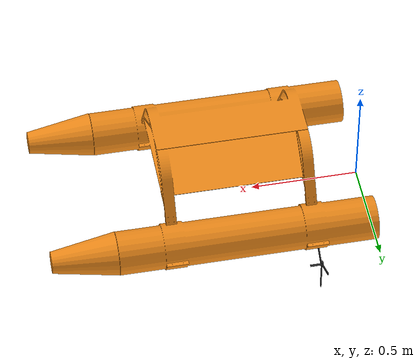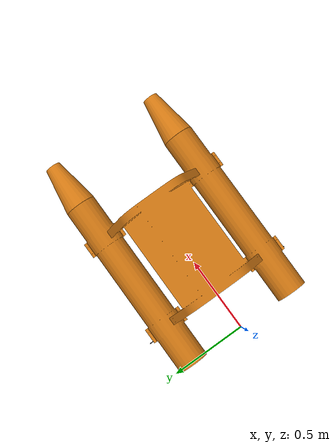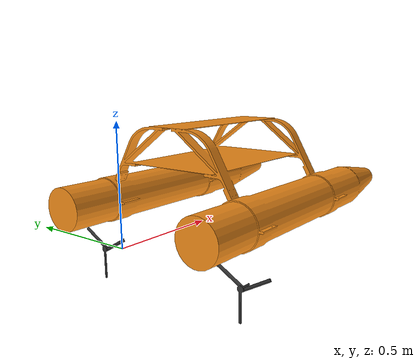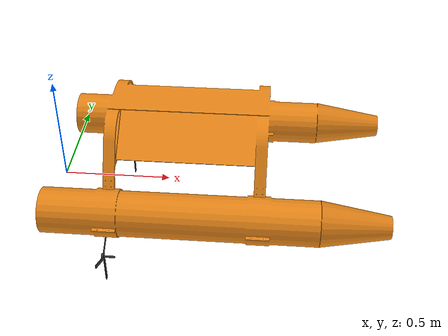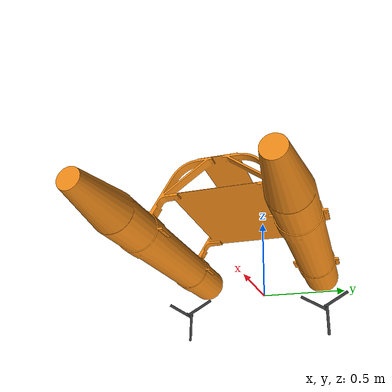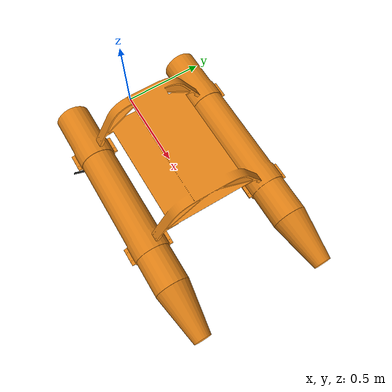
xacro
<?xml version="1.0"?>
<robot xmlns:xacro="http://ros.org/wiki/xacro" name="duckieboat">
  <xacro:include filename="propeties_duckieboat.urdf.xacro"/>

  <gazebo reference="base_link">
    <material>Gazebo/Orange</material>
  </gazebo>
  <link
    name="base_link">
    <inertial>
      <origin
        xyz="0 -0.48 0.5"
        rpy="0 0 0" />
      <mass
        value="200" />
      <inertia
        ixx="0.80923"
        ixy="3.5773E-33"
        ixz="1.063E-17"
        iyy="0.80923"
        iyz="-2.7232E-16"
        izz="9.178E-32" />
    </inertial>
    <visual>
      <origin
        xyz="0 -0.48 0"
        rpy="0 0 0" />
      <geometry>
        <mesh scale="0.001 0.001 0.001"
          filename="package://wamv_description/mesh/DUCKIEBOAT-Base.stl" />
      </geometry>
    </visual>
    <collision>
      <origin
        xyz="0 -0.48 0"
        rpy="0 0 0" />
      <geometry>
        <mesh scale="0.001 0.001 0.001"
          filename="package://wamv_description/mesh/DUCKIEBOAT-Base.stl" />
      </geometry>
    </collision>
  </link>

  <!-- right motor -->
  <link name="right_motor">
    <visual>
     <geometry>
       <mesh filename="package://wamv_description/mesh/PROPELLER.dae"/>
     </geometry>
    </visual>
    <collision name="right_motor_collision">
      <geometry>
        <mesh filename="package://wamv_description/mesh/PROPELLER.dae"/>
      </geometry>
    </collision>
    <inertial>
      <mass value="0.01"/>
      <inertia ixx="0.00086" ixy="0.00" ixz="0.00" iyy="0.00086" iyz="0.00" izz="0.0017"/>
    </inertial>
  </link>

  <joint name="right_motor_joint" type="continuous">
    <origin xyz="${motor_position_x} -${motor_position_y} ${motor_position_z}"/>
    <parent link="base_link"/>
    <child link="right_motor"/>
    <limit effort="0.5293" velocity="100${pi}" />
  </joint>

  <transmission name="right_motor_trans">
    <type>transmission_interface/SimpleTransmission</type>
    <joint name="right_motor_joint">
      <hardwareInterface>VelocityJointInterface</hardwareInterface>
    </joint>
    <actuator name="right_motor_actuator">
      <hardwareInterface>VelocityJointInterface</hardwareInterface>
      <mechanicalReduction>30</mechanicalReduction>
    </actuator>
  </transmission>

  <!-- left motor -->
  <link name="left_motor">
    <visual>
     <geometry>
       <mesh filename="package://wamv_description/mesh/PROPELLER.dae"/>
     </geometry>
    </visual>
    <collision name="left_motor_collision">
      <geometry>
        <mesh filename="package://wamv_description/mesh/PROPELLER.dae"/>
      </geometry>
    </collision>
    <inertial>
      <mass value="0.01"/>
      <inertia ixx="0.00086" ixy="0.00" ixz="0.00" iyy="0.00086" iyz="0.00" izz="0.0017"/>
    </inertial>
  </link>

  <joint name="left_motor_joint" type="continuous">
    <origin xyz="${motor_position_x} ${motor_position_y} ${motor_position_z}"/>
    <parent link="base_link"/>
    <child link="left_motor"/>
    <limit effort="0.5293" velocity="100${pi}" />
  </joint>

  <transmission name="left_motor_trans">
    <type>transmission_interface/SimpleTransmission</type>
    <joint name="left_motor_joint">
      <hardwareInterface>VelocityJointInterface</hardwareInterface>
    </joint>
    <actuator name="left_motor_actuator">
      <hardwareInterface>VelocityJointInterface</hardwareInterface>
      <mechanicalReduction>30</mechanicalReduction>
    </actuator>
  </transmission>

  <joint name="base_link_joint" type="fixed">
    <origin xyz="0 0 0"/>
    <parent link="base_footprint"/>
    <child link="base_link"/>
  </joint>

  <link name="base_footprint"/>

</robot>

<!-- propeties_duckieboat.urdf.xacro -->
<robot xmlns:xacro="http://ros.org/wiki/xacro" name="duckieboat">
  <xacro:property name="motor_position_x" value="0.3" />
  <xacro:property name="motor_position_y" value="0.4" />
  <xacro:property name="motor_position_z" value="-0.15" />

</robot>
